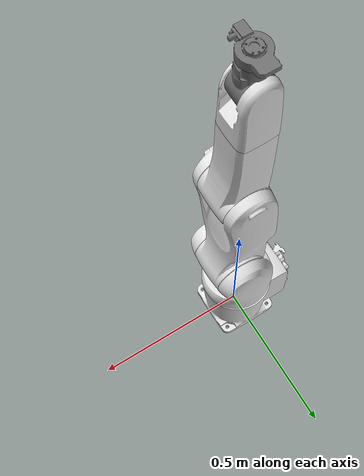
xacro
<?xml version="1.0" ?>

<robot xmlns:xacro="http://www.ros.org/wiki/xacro" name="vs087" >
  <xacro:include filename="$(find denso_robot_descriptions)/vs087_description/urdf/vs087_macro.urdf.xacro"/>

  <link name="world"/>
  <xacro:vs087 prefix="" parent="world">
    <origin xyz="0 0 0" rpy="0 0 0" />
  </xacro:vs087>
</robot>

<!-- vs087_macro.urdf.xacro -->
<robot xmlns:xacro="http://www.ros.org/wiki/xacro" name="vs087">
  <xacro:property name="meshpath" value="package://denso_robot_descriptions/vs087_description/meshes" />
  <xacro:property name="pi" value="3.14159" />
  <xacro:property name="safety_offset" value="0.02" />
  <gazebo>
    <plugin name="gazebo_ros_control" filename="libgazebo_ros_control.so">
      <robotNamespace>/vs087</robotNamespace>
    </plugin>
  </gazebo>

  <xacro:macro name="vs087" params="parent prefix *origin">
    <xacro:property name="distro" value="$(optenv ROS_DISTRO)"/>
    <xacro:property name="hwi_prefix" value="hardware_interface/"/>
    <xacro:if value="${distro == 'indigo'}">
      <xacro:property name="hwi_prefix" value=""/>
    </xacro:if>

    <!-- Fixing the robot base -->
    <joint name="${prefix}base_joint" type="fixed">
      <xacro:insert_block name="origin" />
      <parent link="${parent}" />
      <child link="${prefix}base_link" />
    </joint>
    <link name="${prefix}base_link">
      <visual>
        <origin xyz="0 0 0" rpy="0 0 0" />
        <geometry>
          <mesh filename="${meshpath}/base_link.dae" />
        </geometry>
        <material name="denso-material">
          <color rgba="0.88 0.88 0.88 1.0" />
        </material>
      </visual>
      <collision>
        <origin rpy="0 0 0" xyz="0 0 0" />
        <geometry>
          <mesh filename="${meshpath}/base_link.dae" />
        </geometry>
      </collision>
      <inertial>
        <mass value="1" />
        <origin rpy="0.000000 0.000000 0.000000" xyz="0.000000 0.000000 0.000000" />
        <inertia ixx="1" ixy="0" ixz="0" iyy="1" iyz="0" izz="1" />
      </inertial>
    </link>
    <joint name="${prefix}joint_1" type="revolute">
      <axis xyz="0 0 1" />
      <limit effort="19.73356" lower="${-2.97 + safety_offset}" upper="${2.97 - safety_offset}" velocity="3.926991" />
      <parent link="${prefix}base_link" />
      <child link="${prefix}link_1" />
      <origin xyz="0 0 0" rpy="0 0 0" />
    </joint>
    <link name="${prefix}link_1">
      <visual>
        <origin xyz="0 0 0.168" rpy="0 0 0" />
        <geometry>
          <mesh filename="${meshpath}/joint_1.dae" />
        </geometry>
        <material name="denso-material" />
      </visual>
      <collision>
        <origin rpy="0 0 0" xyz="0 0 0.168" />
        <geometry>
          <mesh filename="${meshpath}/joint_1.dae" />
        </geometry>
      </collision>
      <inertial>
        <mass value="1" />
        <origin rpy="0.000000 0.000000 0.000000" xyz="0.000000 0.000000 0.000000" />
        <inertia ixx="1" ixy="0" ixz="0" iyy="1" iyz="0" izz="1" />
      </inertial>
    </link>
    <joint name="${prefix}joint_2" type="revolute">
      <axis xyz="0 0 1" />
      <limit effort="16.8447" lower="${-1.75 + safety_offset}" upper="${2.36 - safety_offset}" velocity="2.617994" />
      <parent link="${prefix}link_1" />
      <child link="${prefix}link_2" />
      <origin xyz="0.03 0 0.395" rpy="${-pi/2} ${-pi/2} 0" />
    </joint>
    <link name="${prefix}link_2">
      <visual>
        <origin xyz="0 0 0" rpy="0 0 0" />
        <geometry>
          <mesh filename="${meshpath}/joint_2.dae" />
        </geometry>
        <material name="denso-material" />
      </visual>
      <collision>
        <origin rpy="0 0 0" xyz="0 0 0" />
        <geometry>
          <mesh filename="${meshpath}/joint_2.dae" />
        </geometry>
      </collision>
      <inertial>
        <mass value="1" />
        <origin rpy="0.000000 0.000000 0.000000" xyz="0.000000 0.000000 0.000000" />
        <inertia ixx="1" ixy="0" ixz="0" iyy="1" iyz="0" izz="1" />
      </inertial>
    </link>
    <joint name="${prefix}joint_3" type="revolute">
      <axis xyz="0 0 1" />
      <limit effort="20.70885" lower="${-2.37 + safety_offset}" upper="${2.67 - safety_offset}" velocity="2.858326" />
      <parent link="${prefix}link_2" />
      <child link="${prefix}link_3" />
      <origin xyz="0.445 0 0" rpy="0 0 0" />
    </joint>
    <link name="${prefix}link_3">
      <visual>
        <origin xyz="0 0 0" rpy="0 0 0" />
        <geometry>
          <mesh filename="${meshpath}/joint_3.dae" />
        </geometry>
        <material name="denso-material" />
      </visual>
      <collision>
        <origin rpy="0 0 0" xyz="0 0 0" />
        <geometry>
          <mesh filename="${meshpath}/joint_3.dae" />
        </geometry>
      </collision>
      <inertial>
        <mass value="1" />
        <origin rpy="0.000000 0.000000 0.000000" xyz="0.000000 0.000000 0.000000" />
        <inertia ixx="1" ixy="0" ixz="0" iyy="1" iyz="0" izz="1" />
      </inertial>
    </link>
    <joint name="${prefix}joint_4" type="revolute">
      <axis xyz="0 0 1" />
      <limit effort="20.96646" lower="${-4.71 + safety_offset}" upper="${4.71 - safety_offset}" velocity="3.926991" />
      <parent link="${prefix}link_3" />
      <child link="${prefix}link_4" />
      <origin xyz="0 -0.02 0" rpy="${pi/2} 0 ${pi/2}" />
    </joint>
    <link name="${prefix}link_4">
      <visual>
        <origin xyz="0 0 0.257" rpy="0 0 0" />
        <geometry>
          <mesh filename="${meshpath}/joint_4.dae" />
        </geometry>
        <material name="denso-material" />
      </visual>
      <collision>
        <origin rpy="0 0 0" xyz="0 0 0.257" />
        <geometry>
          <mesh filename="${meshpath}/joint_4.dae" />
        </geometry>
      </collision>
      <inertial>
        <mass value="1" />
        <origin rpy="0.000000 0.000000 0.000000" xyz="0.000000 0.000000 0.000000" />
        <inertia ixx="1" ixy="0" ixz="0" iyy="1" iyz="0" izz="1" />
      </inertial>
    </link>
    <joint name="${prefix}joint_5" type="revolute">
      <axis xyz="0 0 1" />
      <limit effort="23.72286" lower="${-2.09 + safety_offset}" upper="${2.09 - safety_offset}" velocity="3.021688" />
      <parent link="${prefix}link_4" />
      <child link="${prefix}link_5" />
      <origin xyz="0 0 0.43" rpy="${-pi/2} ${-pi/2} 0" />
    </joint>
    <link name="${prefix}link_5">
      <visual>
        <origin xyz="0 0 0" rpy="0 0 0" />
        <geometry>
          <mesh filename="${meshpath}/joint_5.dae" />
        </geometry>
        <material name="denso-material_dark">
          <color rgba="0.44 0.44 0.44 1.0" />
        </material>
      </visual>
      <collision>
        <origin rpy="0 0 0" xyz="0 0 0" />
        <geometry>
          <mesh filename="${meshpath}/joint_5.dae" />
        </geometry>
      </collision>
      <inertial>
        <mass value="1" />
        <origin rpy="0.000000 0.000000 0.000000" xyz="0.000000 0.000000 0.000000" />
        <inertia ixx="1" ixy="0" ixz="0" iyy="1" iyz="0" izz="1" />
      </inertial>
    </link>
    <joint name="${prefix}joint_6" type="revolute">
      <axis xyz="0 0 1" />
      <limit effort="33.51032" lower="${-2*pi + safety_offset}" upper="${2*pi - safety_offset}" velocity="6.283185" />
      <parent link="${prefix}link_5" />
      <child link="${prefix}link_6" />
      <origin xyz="0.115 0 0" rpy="${pi/2} 0 ${pi/2}" />
    </joint>
    <link name="${prefix}link_6">
      <visual>
        <origin xyz="0 0 0" rpy="0 0 0" />
        <geometry>
          <mesh filename="${meshpath}/joint_6.dae" />
        </geometry>
        <material name="denso-material_dark" />
      </visual>
      <collision>
        <origin rpy="0 0 0" xyz="0 0 0" />
        <geometry>
          <mesh filename="${meshpath}/joint_6.dae" />
        </geometry>
      </collision>
      <inertial>
        <mass value="1" />
        <origin rpy="0.000000 0.000000 0.000000" xyz="0.000000 0.000000 0.000000" />
        <inertia ixx="1" ixy="0" ixz="0" iyy="1" iyz="0" izz="1" />
      </inertial>
    </link>
    <joint name="${prefix}joint_tcp" type="fixed">
      <parent link="${prefix}link_6" />
      <child link="${prefix}ee_link" />
      <origin xyz="0 0 0" rpy="0 0 0" />
    </joint>
    <link name="${prefix}ee_link">
      <collision>
        <origin xyz="0 0 0" rpy="0 0 0" />
        <geometry>
          <box size="0.001 0.001 0.001" />
        </geometry>
      </collision>
    </link>
    <transmission name="${prefix}joint_1_trans">
      <type>transmission_interface/SimpleTransmission</type>
      <joint name="${prefix}joint_1">
        <hardwareInterface>${hwi_prefix}PositionJointInterface</hardwareInterface>
      </joint>
      <actuator name="${prefix}joint_1_motor">
        <mechanicalReduction>1</mechanicalReduction>
      </actuator>
    </transmission>
    <transmission name="${prefix}joint_2_trans">
      <type>transmission_interface/SimpleTransmission</type>
      <joint name="${prefix}joint_2">
        <hardwareInterface>${hwi_prefix}PositionJointInterface</hardwareInterface>
      </joint>
      <actuator name="${prefix}joint_2_motor">
        <mechanicalReduction>1</mechanicalReduction>
      </actuator>
    </transmission>
    <transmission name="${prefix}joint_3_trans">
      <type>transmission_interface/SimpleTransmission</type>
      <joint name="${prefix}joint_3">
        <hardwareInterface>${hwi_prefix}PositionJointInterface</hardwareInterface>
      </joint>
      <actuator name="${prefix}joint_3_motor">
        <mechanicalReduction>1</mechanicalReduction>
      </actuator>
    </transmission>
    <transmission name="${prefix}joint_4_trans">
      <type>transmission_interface/SimpleTransmission</type>
      <joint name="${prefix}joint_4">
        <hardwareInterface>${hwi_prefix}PositionJointInterface</hardwareInterface>
      </joint>
      <actuator name="${prefix}joint_4_motor">
        <mechanicalReduction>1</mechanicalReduction>
      </actuator>
    </transmission>
    <transmission name="${prefix}joint_5_trans">
      <type>transmission_interface/SimpleTransmission</type>
      <joint name="${prefix}joint_5">
        <hardwareInterface>${hwi_prefix}PositionJointInterface</hardwareInterface>
      </joint>
      <actuator name="${prefix}joint_5_motor">
        <mechanicalReduction>1</mechanicalReduction>
      </actuator>
    </transmission>
    <transmission name="${prefix}joint_6_trans">
      <type>transmission_interface/SimpleTransmission</type>
      <joint name="${prefix}joint_6">
        <hardwareInterface>${hwi_prefix}PositionJointInterface</hardwareInterface>
      </joint>
      <actuator name="${prefix}joint_6_motor">
        <mechanicalReduction>1</mechanicalReduction>
      </actuator>
    </transmission>
  </xacro:macro>
</robot>
